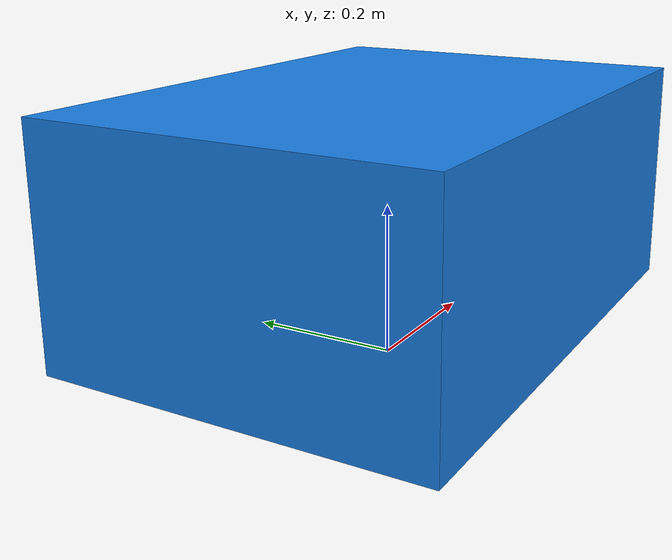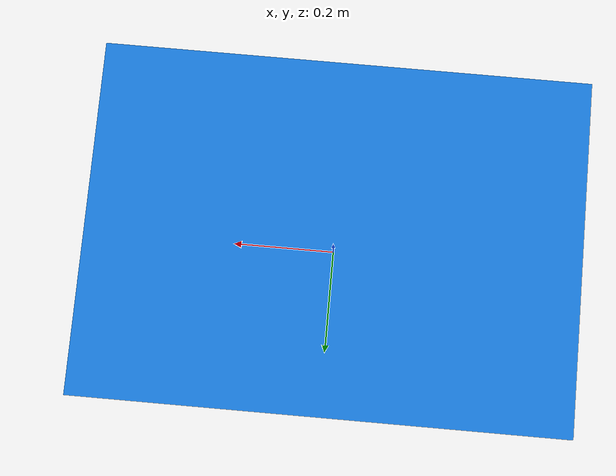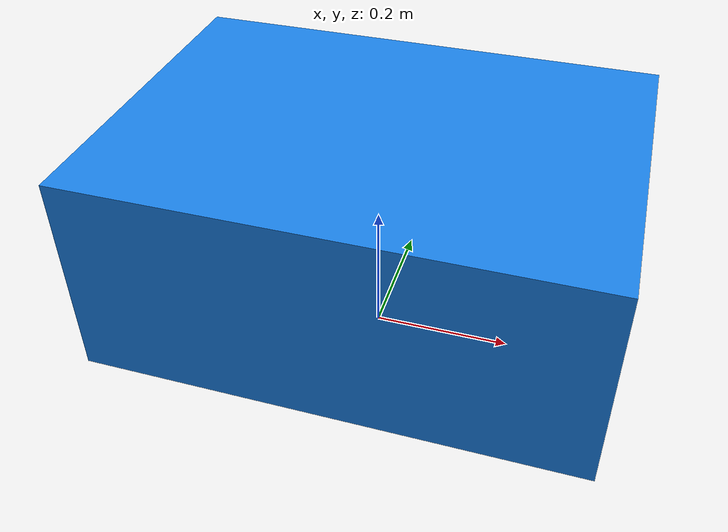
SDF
<?xml version="1.0"?>
<sdf version="1.8">
  <model name="aura_rover">
    <link name="link">
      <pose>0 0 0.2 0 0 0</pose>
      <inertial><mass>12</mass></inertial>
      <collision name="collision">
        <geometry><box><size>0.7 0.5 0.3</size></box></geometry>
      </collision>
      <visual name="visual">
        <geometry><box><size>0.7 0.5 0.3</size></box></geometry>
        <material><ambient>0.1 0.5 0.9 1</ambient></material>
      </visual>
    </link>
  </model>
</sdf>
